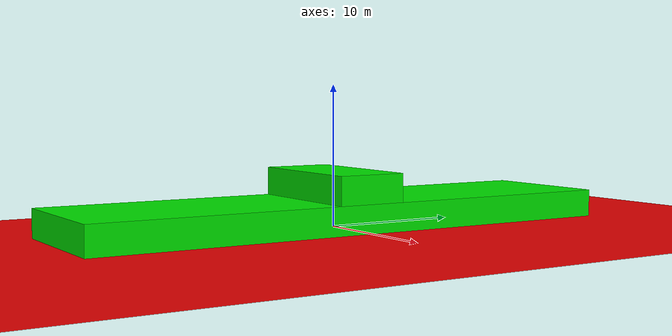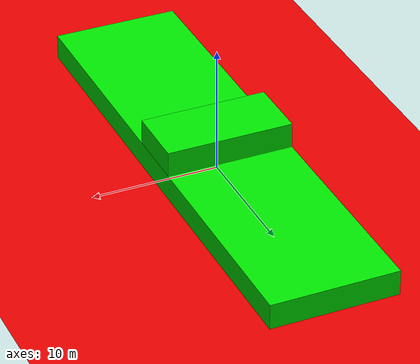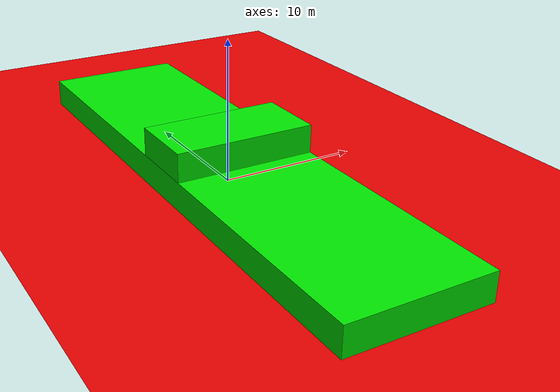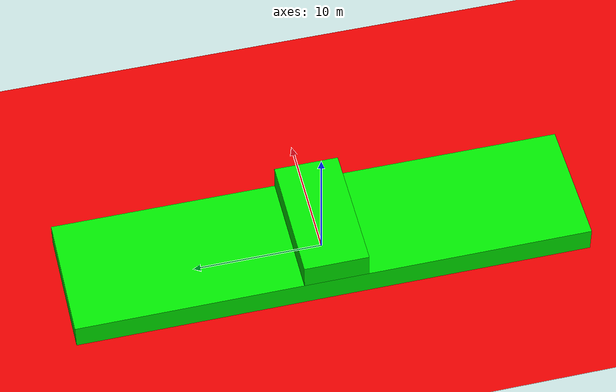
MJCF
<mujoco>
    <option cone="elliptic"/>

    <worldbody>
        <geom type="plane" size="100 100 5" rgba=".9 0 0 1" friction="0.4 0.4 0.4"/>
        <body pos="0 0 1.0">
            <inertial pos="0 0 0" mass="80" diaginertia="10693.3333 693.3333 11333.3333"/>
            <joint type="free"/>
            <geom type="box" size="5.0 20.0 1.0" rgba="0 .9 0 1" friction="0.4 0.4 0.4"/>
        </body>
        <body pos="0 0 3.0">
            <inertial pos="0 0 0" mass="10" diaginertia="24.1667 86.6667 104.1667"/>
            <joint type="free"/>
            <geom type="box" size="5.0 2.5 1.0" rgba="0 .9 0 1" friction="0.4 0.4 0.4"/>
        </body>
    </worldbody>
</mujoco>
